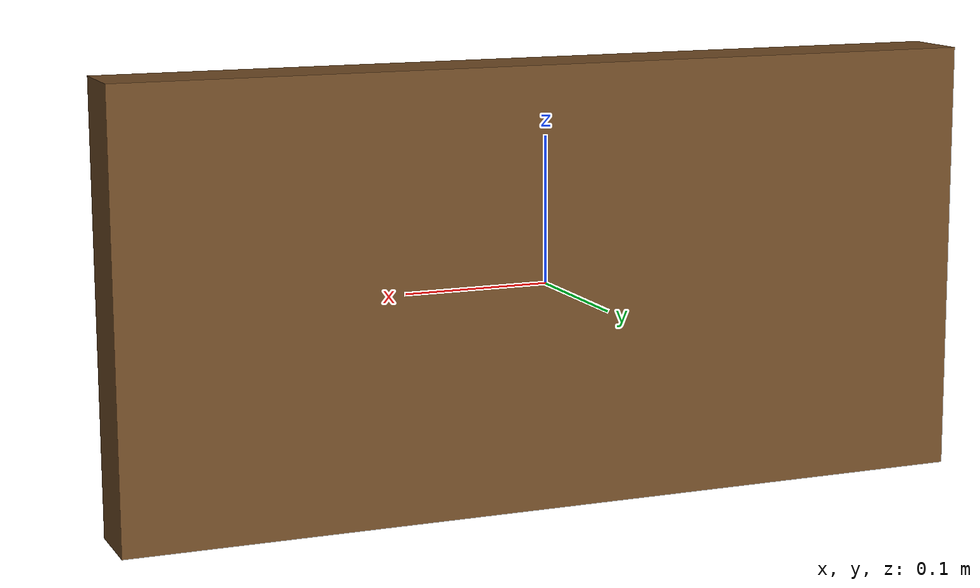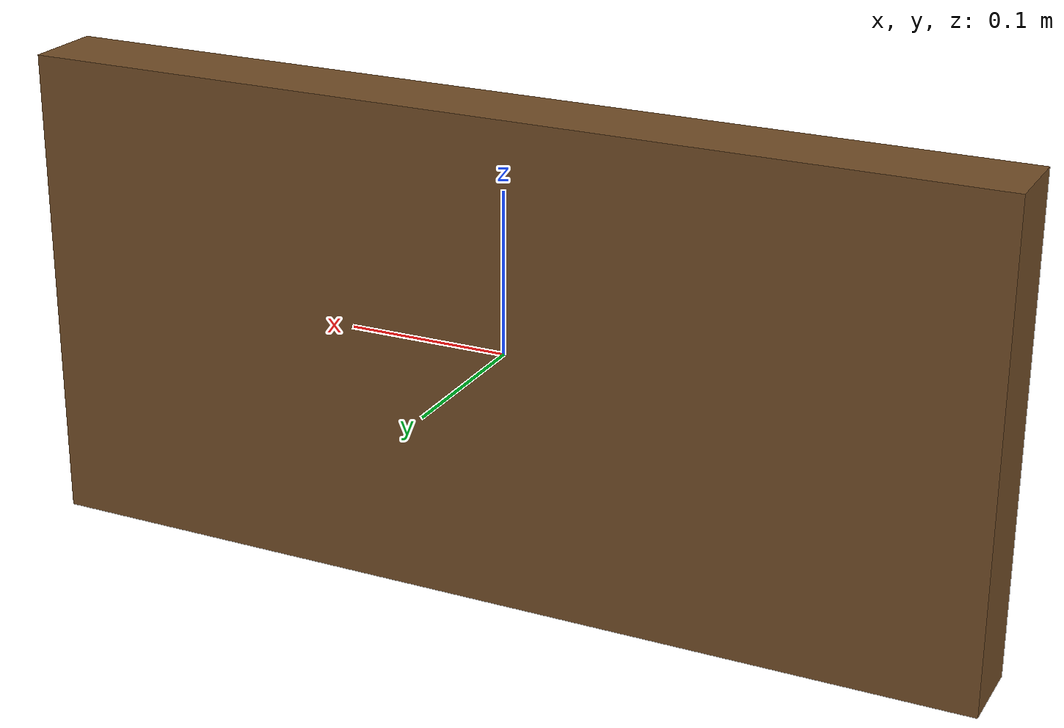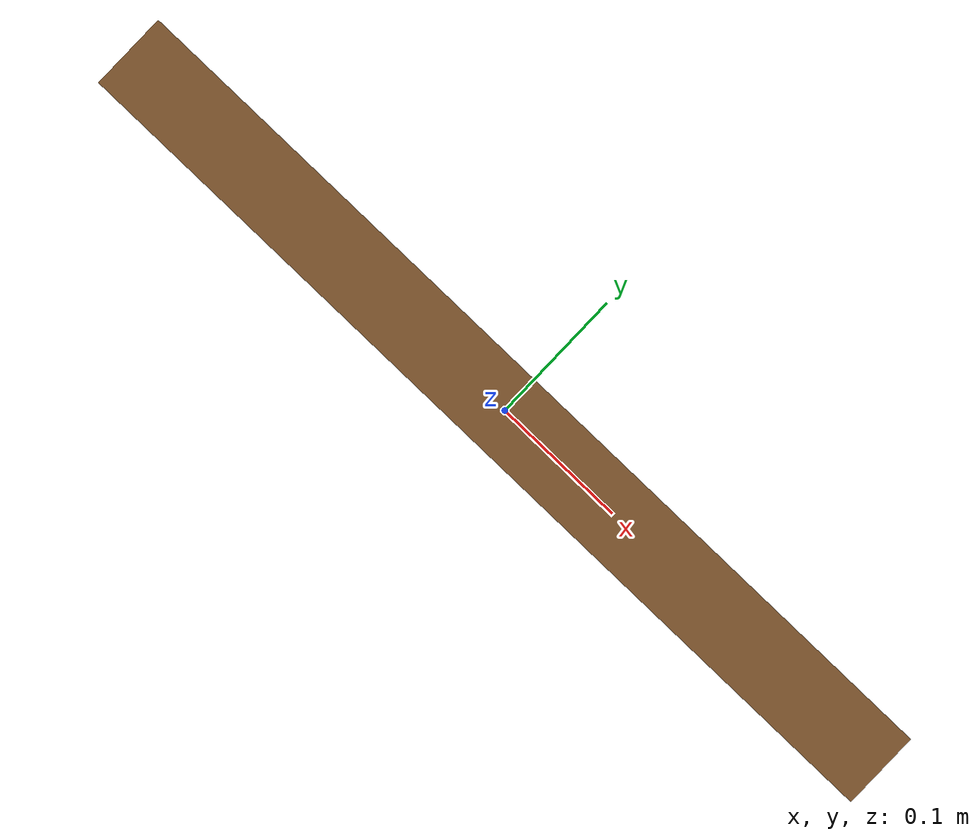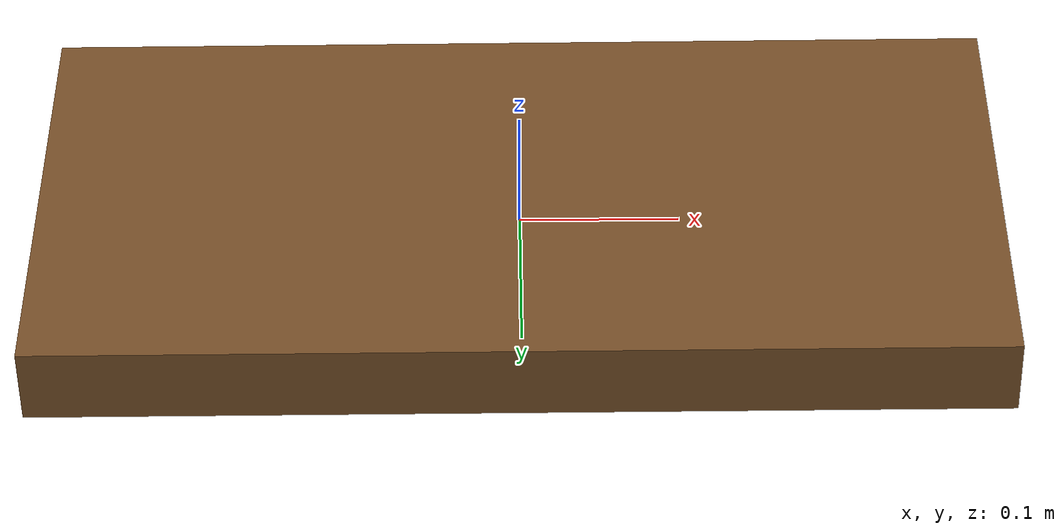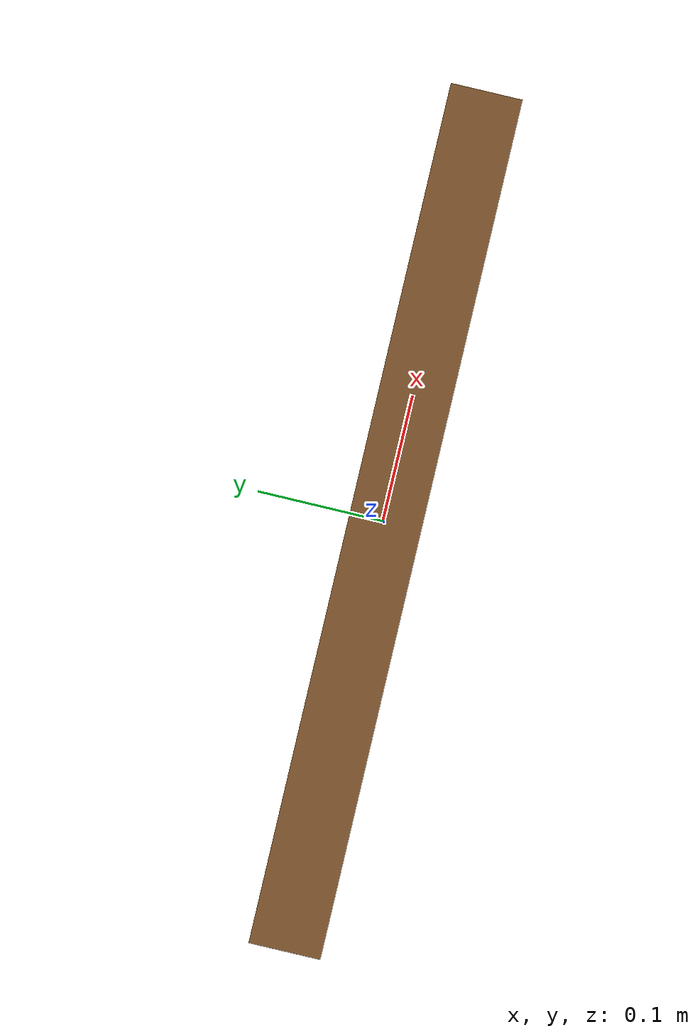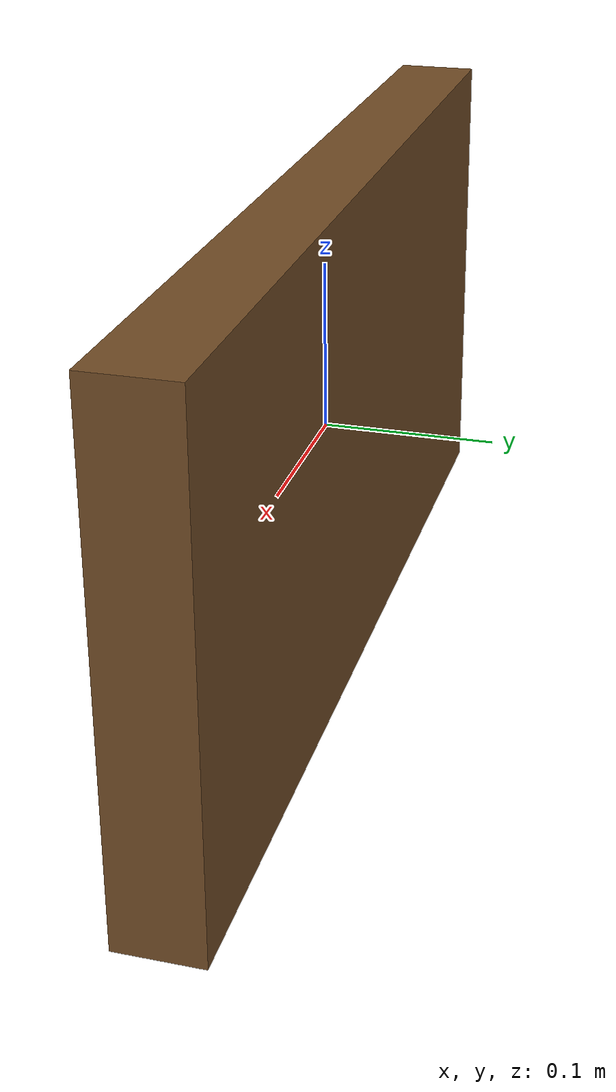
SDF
<?xml version="1.0" ?>
<sdf version="1.7">
  <model name="wall60cm">
    <static>true</static>
    <pose>0 0 0 0 0 0</pose>

    <link name="link">
      <collision name="collision">
        <geometry><box><size>0.6 0.05 0.3</size></box></geometry>
      </collision>

      <visual name="visual">
        <geometry><box><size>0.6 0.05 0.3</size></box></geometry>
        <material>
          <ambient>0.45 0.30 0.15 1</ambient>
          <diffuse>0.45 0.30 0.15 1</diffuse>
          <specular>0.05 0.05 0.05 1</specular>
        </material>
      </visual>
    </link>
  </model>
</sdf>
